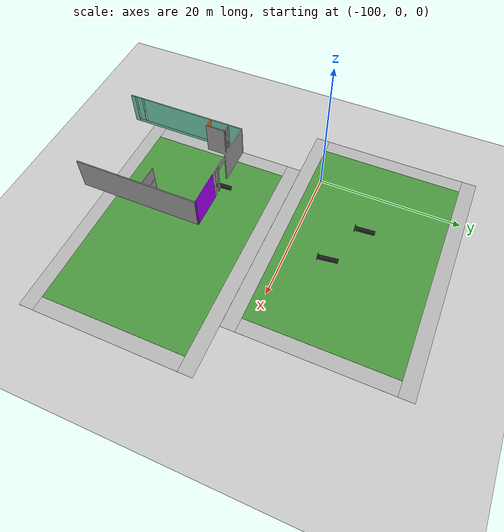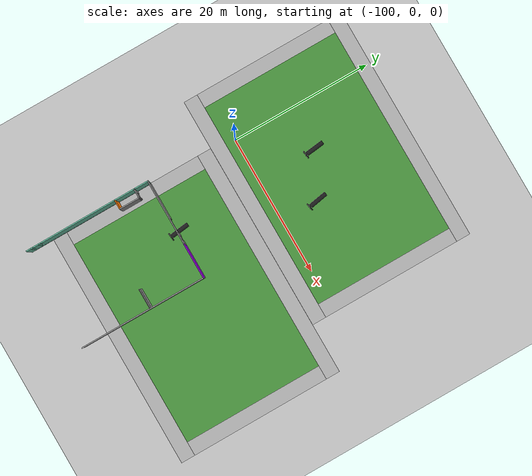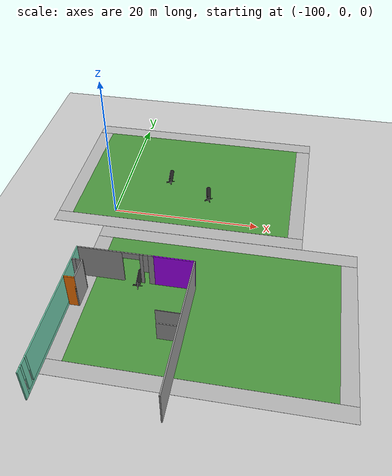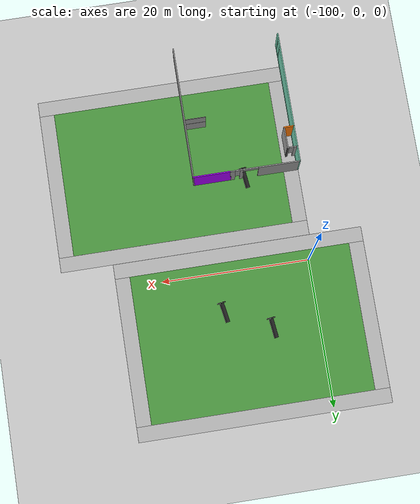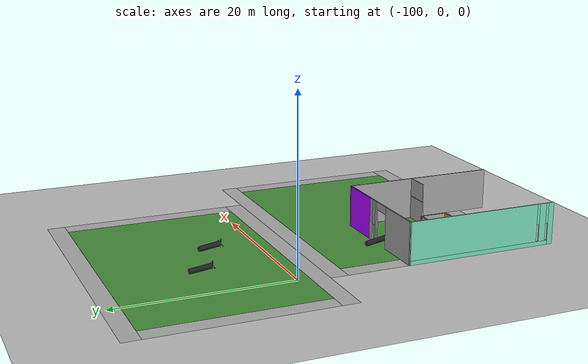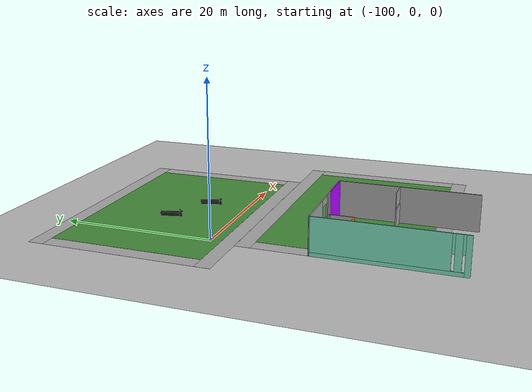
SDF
<sdf version="1.7">
 <world name="default">
  <model name="ground_plane">
   <static>1</static>
   <link name="link">
    <collision name="collision">
     <geometry><plane><normal>0 0 1</normal><size>100 100</size></plane></geometry>
     <surface><friction><ode><mu>100</mu><mu2>50</mu2></ode></friction></surface>
    </collision>
    <visual name="visual">
     <cast_shadows>0</cast_shadows>
     <geometry><plane><normal>0 0 1</normal><size>100 100</size></plane></geometry>
     <material>
      <script><uri>file://media/materials/scripts/gazebo.material</uri><name>Gazebo/Grey</name></script>
     </material>
    </visual>
   </link>
  </model>
  <model name="robocup_3d_field_1">
   <static>1</static>
   <link name="field">
    <pose>0 0 0.01 0 -0 0</pose>
    <collision name="collision">
     <geometry><plane><normal>0 0 1</normal><size>30 20</size></plane></geometry>
     <surface><friction><ode><mu>100</mu><mu2>50</mu2></ode></friction></surface>
    </collision>
    <visual name="base1">
     <pose>0 11 0.001 0 -0 0</pose>
     <cast_shadows>0</cast_shadows>
     <geometry><plane><normal>0 0 1</normal><size>34 2</size></plane></geometry>
     <material>
      <script>
       <uri>model://robocup_3Dsim_field/materials/scripts/</uri>
       <uri>model://robocup_3Dsim_field/materials/textures/</uri>
       <name>RoboCup/FieldBorder</name>
      </script>
     </material>
    </visual>
    <visual name="base2">
     <pose>0 -11 0.001 0 -0 0</pose>
     <cast_shadows>0</cast_shadows>
     <geometry><plane><normal>0 0 1</normal><size>34 2</size></plane></geometry>
     <material>
      <script>
       <uri>model://robocup_3Dsim_field/materials/scripts/</uri>
       <uri>model://robocup_3Dsim_field/materials/textures/</uri>
       <name>RoboCup/FieldBorder</name>
      </script>
     </material>
    </visual>
    <visual name="base3">
     <pose>16 0 0.001 0 -0 0</pose>
     <cast_shadows>0</cast_shadows>
     <geometry><plane><normal>0 0 1</normal><size>2 20</size></plane></geometry>
     <material>
      <script>
       <uri>model://robocup_3Dsim_field/materials/scripts/</uri>
       <uri>model://robocup_3Dsim_field/materials/textures/</uri>
       <name>RoboCup/FieldBorder</name>
      </script>
     </material>
    </visual>
    <visual name="base4">
     <pose>-16 0 0.001 0 -0 0</pose>
     <cast_shadows>0</cast_shadows>
     <geometry><plane><normal>0 0 1</normal><size>2 20</size></plane></geometry>
     <material>
      <script>
       <uri>model://robocup_3Dsim_field/materials/scripts/</uri>
       <uri>model://robocup_3Dsim_field/materials/textures/</uri>
       <name>RoboCup/FieldBorder</name>
      </script>
     </material>
    </visual>
    <visual name="carpet">
     <cast_shadows>0</cast_shadows>
     <geometry><plane><normal>0 0 1</normal><size>30 20</size></plane></geometry>
     <material>
      <script>
       <uri>model://robocup_3Dsim_field/materials/scripts/</uri>
       <uri>model://robocup_3Dsim_field/materials/textures/</uri>
       <name>RoboCup/Grass</name>
      </script>
     </material>
    </visual>
   </link>
   <pose>-90.7952 8.5998 0 0 -0 0</pose>
  </model>
  <model name="robocup_3d_field_4">
   <static>1</static>
   <link name="field">
    <pose>0 0 0.01 0 -0 0</pose>
    <collision name="collision">
     <geometry><plane><normal>0 0 1</normal><size>30 20</size></plane></geometry>
     <surface><friction><ode><mu>100</mu><mu2>50</mu2></ode></friction></surface>
    </collision>
    <visual name="base1">
     <pose>0 11 0.001 0 -0 0</pose>
     <cast_shadows>0</cast_shadows>
     <geometry><plane><normal>0 0 1</normal><size>34 2</size></plane></geometry>
     <material>
      <script>
       <uri>model://robocup_3Dsim_field/materials/scripts/</uri>
       <uri>model://robocup_3Dsim_field/materials/textures/</uri>
       <name>RoboCup/FieldBorder</name>
      </script>
     </material>
    </visual>
    <visual name="base2">
     <pose>0 -11 0.001 0 -0 0</pose>
     <cast_shadows>0</cast_shadows>
     <geometry><plane><normal>0 0 1</normal><size>34 2</size></plane></geometry>
     <material>
      <script>
       <uri>model://robocup_3Dsim_field/materials/scripts/</uri>
       <uri>model://robocup_3Dsim_field/materials/textures/</uri>
       <name>RoboCup/FieldBorder</name>
      </script>
     </material>
    </visual>
    <visual name="base3">
     <pose>16 0 0.001 0 -0 0</pose>
     <cast_shadows>0</cast_shadows>
     <geometry><plane><normal>0 0 1</normal><size>2 20</size></plane></geometry>
     <material>
      <script>
       <uri>model://robocup_3Dsim_field/materials/scripts/</uri>
       <uri>model://robocup_3Dsim_field/materials/textures/</uri>
       <name>RoboCup/FieldBorder</name>
      </script>
     </material>
    </visual>
    <visual name="base4">
     <pose>-16 0 0.001 0 -0 0</pose>
     <cast_shadows>0</cast_shadows>
     <geometry><plane><normal>0 0 1</normal><size>2 20</size></plane></geometry>
     <material>
      <script>
       <uri>model://robocup_3Dsim_field/materials/scripts/</uri>
       <uri>model://robocup_3Dsim_field/materials/textures/</uri>
       <name>RoboCup/FieldBorder</name>
      </script>
     </material>
    </visual>
    <visual name="carpet">
     <cast_shadows>0</cast_shadows>
     <geometry><plane><normal>0 0 1</normal><size>30 20</size></plane></geometry>
     <material>
      <script>
       <uri>model://robocup_3Dsim_field/materials/scripts/</uri>
       <uri>model://robocup_3Dsim_field/materials/textures/</uri>
       <name>RoboCup/Grass</name>
      </script>
     </material>
    </visual>
   </link>
   <pose>-83.7199 -15.4098 0 0 -0 0</pose>
  </model>
  <model name="33333osrf_elevator">
   <link name="Wall_0">
    <pose>-7.17647 0.013004 0 0 -0 1.57174</pose>
    <visual name="Wall_0_Visual_1">
     <meta><layer>0</layer></meta>
     <pose>0.331828 0 0.25 0 -0 0</pose>
     <geometry><box><size>17.4519 0.15 0.5</size></box></geometry>
     <material>
      <script><uri>file://media/materials/scripts/gazebo.material</uri><name>Gazebo/Grey</name></script>
      <ambient>0.435294 0.796078 0.67451 1</ambient>
      <shader type="pixel"/>
     </material>
    </visual>
    <visual name="Wall_0_Visual_0">
     <meta><layer>0</layer></meta>
     <pose>-8.72596 0 2.4385 0 -0 0</pose>
     <geometry><box><size>0.663656 0.15 4.877</size></box></geometry>
     <material>
      <script><uri>file://media/materials/scripts/gazebo.material</uri><name>Gazebo/Grey</name></script>
      <ambient>0.435294 0.796078 0.67451 1</ambient>
      <shader type="pixel"/>
     </material>
    </visual>
    <visual name="Wall_0_Visual_3">
     <meta><layer>0</layer></meta>
     <pose>1.05709 0 2.6885 0 -0 0</pose>
     <geometry><box><size>16.0014 0.15 4.377</size></box></geometry>
     <material>
      <script><uri>file://media/materials/scripts/gazebo.material</uri><name>Gazebo/Grey</name></script>
      <ambient>0.435294 0.796078 0.67451 1</ambient>
      <shader type="pixel"/>
     </material>
    </visual>
    <visual name="Wall_0_Visual_2">
     <meta><layer>0</layer></meta>
     <pose>-7.67281 0 2.6885 0 -0 0</pose>
     <geometry><box><size>0.816657 0.15 4.377</size></box></geometry>
     <material>
      <script><uri>file://media/materials/scripts/gazebo.material</uri><name>Gazebo/Grey</name></script>
      <ambient>0.435294 0.796078 0.67451 1</ambient>
      <shader type="pixel"/>
     </material>
    </visual>
    <visual name="Wall_0_Visual_4">
     <meta><layer>0</layer></meta>
     <pose>-8.23763 0 3.6885 0 -0 0</pose>
     <geometry><box><size>0.313 0.15 2.377</size></box></geometry>
     <material>
      <script><uri>file://media/materials/scripts/gazebo.material</uri><name>Gazebo/Grey</name></script>
      <ambient>0.435294 0.796078 0.67451 1</ambient>
      <shader type="pixel"/>
     </material>
    </visual>
    <visual name="Wall_0_Visual_5">
     <meta><layer>0</layer></meta>
     <pose>-7.10405 0 3.6885 0 -0 0</pose>
     <geometry><box><size>0.320861 0.15 2.377</size></box></geometry>
     <material>
      <script><uri>file://media/materials/scripts/gazebo.material</uri><name>Gazebo/Grey</name></script>
      <ambient>0.435294 0.796078 0.67451 1</ambient>
      <shader type="pixel"/>
     </material>
    </visual>
    <collision name="Wall_0_Collision_0">
     <pose>-8.72596 0 2.4385 0 -0 0</pose>
     <geometry><box><size>0.663656 0.15 4.877</size></box></geometry>
     <surface>
      <friction>
       <ode><mu>1</mu><mu2>1</mu2><fdir1>0 0 0</fdir1><slip1>0</slip1><slip2>0</slip2></ode>
       <torsional>
        <coefficient>1</coefficient>
        <patch_radius>0</patch_radius>
        <surface_radius>0</surface_radius>
        <use_patch_radius>1</use_patch_radius>
        <ode><slip>0</slip></ode>
       </torsional>
      </friction>
      <bounce><restitution_coefficient>0</restitution_coefficient><threshold>1e+06</threshold></bounce>
      <contact>
       <collide_without_contact>0</collide_without_contact>
       <collide_without_contact_bitmask>1</collide_without_contact_bitmask>
       <collide_bitmask>1</collide_bitmask>
       <ode>
        <soft_cfm>0</soft_cfm>
        <soft_erp>0.2</soft_erp>
        <kp>1e+13</kp>
        <kd>1</kd>
        <max_vel>0.01</max_vel>
        <min_depth>0</min_depth>
       </ode>
       <bullet>
        <split_impulse>1</split_impulse>
        <split_impulse_penetration_threshold>-0.01</split_impulse_penetration_threshold>
        <soft_cfm>0</soft_cfm>
        <soft_erp>0.2</soft_erp>
        <kp>1e+13</kp>
        <kd>1</kd>
       </bullet>
      </contact>
     </surface>
    </collision>
    <collision name="Wall_0_Collision_1">
     <pose>0.331828 0 0.25 0 -0 0</pose>
     <geometry><box><size>17.4519 0.15 0.5</size></box></geometry>
     <surface>
      <friction>
       <ode><mu>1</mu><mu2>1</mu2><fdir1>0 0 0</fdir1><slip1>0</slip1><slip2>0</slip2></ode>
       <torsional>
        <coefficient>1</coefficient>
        <patch_radius>0</patch_radius>
        <surface_radius>0</surface_radius>
        <use_patch_radius>1</use_patch_radius>
        <ode><slip>0</slip></ode>
       </torsional>
      </friction>
      <bounce><restitution_coefficient>0</restitution_coefficient><threshold>1e+06</threshold></bounce>
      <contact>
       <collide_without_contact>0</collide_without_contact>
       <collide_without_contact_bitmask>1</collide_without_contact_bitmask>
       <collide_bitmask>1</collide_bitmask>
       <ode>
        <soft_cfm>0</soft_cfm>
        <soft_erp>0.2</soft_erp>
        <kp>1e+13</kp>
        <kd>1</kd>
        <max_vel>0.01</max_vel>
        <min_depth>0</min_depth>
       </ode>
       <bullet>
        <split_impulse>1</split_impulse>
        <split_impulse_penetration_threshold>-0.01</split_impulse_penetration_threshold>
        <soft_cfm>0</soft_cfm>
        <soft_erp>0.2</soft_erp>
        <kp>1e+13</kp>
        <kd>1</kd>
       </bullet>
      </contact>
     </surface>
    </collision>
    <collision name="Wall_0_Collision_5">
     <pose>-7.10405 0 3.6885 0 -0 0</pose>
     <geometry><box><size>0.320861 0.15 2.377</size></box></geometry>
     <surface>
      <friction>
       <ode><mu>1</mu><mu2>1</mu2><fdir1>0 0 0</fdir1><slip1>0</slip1><slip2>0</slip2></ode>
       <torsional>
        <coefficient>1</coefficient>
        <patch_radius>0</patch_radius>
        <surface_radius>0</surface_radius>
        <use_patch_radius>1</use_patch_radius>
        <ode><slip>0</slip></ode>
       </torsional>
      </friction>
      <bounce><restitution_coefficient>0</restitution_coefficient><threshold>1e+06</threshold></bounce>
      <contact>
       <collide_without_contact>0</collide_without_contact>
       <collide_without_contact_bitmask>1</collide_without_contact_bitmask>
       <collide_bitmask>1</collide_bitmask>
       <ode>
        <soft_cfm>0</soft_cfm>
        <soft_erp>0.2</soft_erp>
        <kp>1e+13</kp>
        <kd>1</kd>
        <max_vel>0.01</max_vel>
        <min_depth>0</min_depth>
       </ode>
       <bullet>
        <split_impulse>1</split_impulse>
        <split_impulse_penetration_threshold>-0.01</split_impulse_penetration_threshold>
        <soft_cfm>0</soft_cfm>
        <soft_erp>0.2</soft_erp>
        <kp>1e+13</kp>
        <kd>1</kd>
       </bullet>
      </contact>
     </surface>
    </collision>
    <collision name="Wall_0_Collision_2">
     <pose>-7.67281 0 2.6885 0 -0 0</pose>
     <geometry><box><size>0.816657 0.15 4.377</size></box></geometry>
     <surface>
      <friction>
       <ode><mu>1</mu><mu2>1</mu2><fdir1>0 0 0</fdir1><slip1>0</slip1><slip2>0</slip2></ode>
       <torsional>
        <coefficient>1</coefficient>
        <patch_radius>0</patch_radius>
        <surface_radius>0</surface_radius>
        <use_patch_radius>1</use_patch_radius>
        <ode><slip>0</slip></ode>
       </torsional>
      </friction>
      <bounce><restitution_coefficient>0</restitution_coefficient><threshold>1e+06</threshold></bounce>
      <contact>
       <collide_without_contact>0</collide_without_contact>
       <collide_without_contact_bitmask>1</collide_without_contact_bitmask>
       <collide_bitmask>1</collide_bitmask>
       <ode>
        <soft_cfm>0</soft_cfm>
        <soft_erp>0.2</soft_erp>
        <kp>1e+13</kp>
        <kd>1</kd>
        <max_vel>0.01</max_vel>
        <min_depth>0</min_depth>
       </ode>
       <bullet>
        <split_impulse>1</split_impulse>
        <split_impulse_penetration_threshold>-0.01</split_impulse_penetration_threshold>
        <soft_cfm>0</soft_cfm>
        <soft_erp>0.2</soft_erp>
        <kp>1e+13</kp>
        <kd>1</kd>
       </bullet>
      </contact>
     </surface>
    </collision>
    <collision name="Wall_0_Collision_3">
     <pose>1.05709 0 2.6885 0 -0 0</pose>
     <geometry><box><size>16.0014 0.15 4.377</size></box></geometry>
     <surface>
      <friction>
       <ode><mu>1</mu><mu2>1</mu2><fdir1>0 0 0</fdir1><slip1>0</slip1><slip2>0</slip2></ode>
       <torsional>
        <coefficient>1</coefficient>
        <patch_radius>0</patch_radius>
        <surface_radius>0</surface_radius>
        <use_patch_radius>1</use_patch_radius>
        <ode><slip>0</slip></ode>
       </torsional>
      </friction>
      <bounce><restitution_coefficient>0</restitution_coefficient><threshold>1e+06</threshold></bounce>
      <contact>
       <collide_without_contact>0</collide_without_contact>
       <collide_without_contact_bitmask>1</collide_without_contact_bitmask>
       <collide_bitmask>1</collide_bitmask>
       <ode>
        <soft_cfm>0</soft_cfm>
        <soft_erp>0.2</soft_erp>
        <kp>1e+13</kp>
        <kd>1</kd>
        <max_vel>0.01</max_vel>
        <min_depth>0</min_depth>
       </ode>
       <bullet>
        <split_impulse>1</split_impulse>
        <split_impulse_penetration_threshold>-0.01</split_impulse_penetration_threshold>
        <soft_cfm>0</soft_cfm>
        <soft_erp>0.2</soft_erp>
        <kp>1e+13</kp>
        <kd>1</kd>
       </bullet>
      </contact>
     </surface>
    </collision>
    <collision name="Wall_0_Collision_4">
     <pose>-8.23763 0 3.6885 0 -0 0</pose>
     <geometry><box><size>0.313 0.15 2.377</size></box></geometry>
     <surface>
      <friction>
       <ode><mu>1</mu><mu2>1</mu2><fdir1>0 0 0</fdir1><slip1>0</slip1><slip2>0</slip2></ode>
       <torsional>
        <coefficient>1</coefficient>
        <patch_radius>0</patch_radius>
        <surface_radius>0</surface_radius>
        <use_patch_radius>1</use_patch_radius>
        <ode><slip>0</slip></ode>
       </torsional>
      </friction>
      <bounce><restitution_coefficient>0</restitution_coefficient><threshold>1e+06</threshold></bounce>
      <contact>
       <collide_without_contact>0</collide_without_contact>
       <collide_without_contact_bitmask>1</collide_without_contact_bitmask>
       <collide_bitmask>1</collide_bitmask>
       <ode>
        <soft_cfm>0</soft_cfm>
        <soft_erp>0.2</soft_erp>
        <kp>1e+13</kp>
        <kd>1</kd>
        <max_vel>0.01</max_vel>
        <min_depth>0</min_depth>
       </ode>
       <bullet>
        <split_impulse>1</split_impulse>
        <split_impulse_penetration_threshold>-0.01</split_impulse_penetration_threshold>
        <soft_cfm>0</soft_cfm>
        <soft_erp>0.2</soft_erp>
        <kp>1e+13</kp>
        <kd>1</kd>
       </bullet>
      </contact>
     </surface>
    </collision>
   </link>
   <link name="Wall_20">
    <pose>5.74253 1.037 0 0 0 -3.1383</pose>
    <visual name="Wall_20_Visual">
     <meta><layer>0</layer></meta>
     <pose>0 0 1.3715 0 -0 0</pose>
     <geometry><box><size>2.88731 0.15 2.743</size></box></geometry>
     <material>
      <script><uri>file://media/materials/scripts/gazebo.material</uri><name>Gazebo/Grey</name></script>
      <ambient>1 1 1 1</ambient>
      <shader type="pixel"/>
     </material>
    </visual>
    <collision name="Wall_20_Collision">
     <pose>0 0 1.3715 0 -0 0</pose>
     <geometry><box><size>2.88731 0.15 2.743</size></box></geometry>
     <surface>
      <friction>
       <ode><mu>1</mu><mu2>1</mu2><fdir1>0 0 0</fdir1><slip1>0</slip1><slip2>0</slip2></ode>
       <torsional>
        <coefficient>1</coefficient>
        <patch_radius>0</patch_radius>
        <surface_radius>0</surface_radius>
        <use_patch_radius>1</use_patch_radius>
        <ode><slip>0</slip></ode>
       </torsional>
      </friction>
      <bounce><restitution_coefficient>0</restitution_coefficient><threshold>1e+06</threshold></bounce>
      <contact>
       <collide_without_contact>0</collide_without_contact>
       <collide_without_contact_bitmask>1</collide_without_contact_bitmask>
       <collide_bitmask>1</collide_bitmask>
       <ode>
        <soft_cfm>0</soft_cfm>
        <soft_erp>0.2</soft_erp>
        <kp>1e+13</kp>
        <kd>1</kd>
        <max_vel>0.01</max_vel>
        <min_depth>0</min_depth>
       </ode>
       <bullet>
        <split_impulse>1</split_impulse>
        <split_impulse_penetration_threshold>-0.01</split_impulse_penetration_threshold>
        <soft_cfm>0</soft_cfm>
        <soft_erp>0.2</soft_erp>
        <kp>1e+13</kp>
        <kd>1</kd>
       </bullet>
      </contact>
     </surface>
    </collision>
   </link>
   <link name="Wall_29">
    <pose>-6.49697 4.1045 0 0 -0 0</pose>
    <visual name="Wall_29_Visual">
     <meta><layer>0</layer></meta>
     <pose>0 0 2.4385 0 -0 0</pose>
     <geometry><box><size>1.39187 0.15 4.877</size></box></geometry>
     <material>
      <script><uri>file://media/materials/scripts/gazebo.material</uri><name>Gazebo/Grey</name></script>
      <ambient>0.996078 0.47451 0.0196078 1</ambient>
      <shader type="pixel"/>
     </material>
    </visual>
    <collision name="Wall_29_Collision">
     <pose>0 0 2.4385 0 -0 0</pose>
     <geometry><box><size>1.39187 0.15 4.877</size></box></geometry>
     <surface>
      <friction>
       <ode><mu>1</mu><mu2>1</mu2><fdir1>0 0 0</fdir1><slip1>0</slip1><slip2>0</slip2></ode>
       <torsional>
        <coefficient>1</coefficient>
        <patch_radius>0</patch_radius>
        <surface_radius>0</surface_radius>
        <use_patch_radius>1</use_patch_radius>
        <ode><slip>0</slip></ode>
       </torsional>
      </friction>
      <bounce><restitution_coefficient>0</restitution_coefficient><threshold>1e+06</threshold></bounce>
      <contact>
       <collide_without_contact>0</collide_without_contact>
       <collide_without_contact_bitmask>1</collide_without_contact_bitmask>
       <collide_bitmask>1</collide_bitmask>
       <ode>
        <soft_cfm>0</soft_cfm>
        <soft_erp>0.2</soft_erp>
        <kp>1e+13</kp>
        <kd>1</kd>
        <max_vel>0.01</max_vel>
        <min_depth>0</min_depth>
       </ode>
       <bullet>
        <split_impulse>1</split_impulse>
        <split_impulse_penetration_threshold>-0.01</split_impulse_penetration_threshold>
        <soft_cfm>0</soft_cfm>
        <soft_erp>0.2</soft_erp>
        <kp>1e+13</kp>
        <kd>1</kd>
       </bullet>
      </contact>
     </surface>
    </collision>
   </link>
   <link name="Wall_30">
    <pose>-5.87597 5.5295 0 0 -0 1.5708</pose>
    <visual name="Wall_30_Visual">
     <meta><layer>0</layer></meta>
     <pose>0 0 2.4385 0 -0 0</pose>
     <geometry><box><size>3 0.15 4.877</size></box></geometry>
     <material>
      <script><uri>file://media/materials/scripts/gazebo.material</uri><name>Gazebo/Grey</name></script>
      <ambient>1 1 1 1</ambient>
      <shader type="pixel"/>
     </material>
    </visual>
    <collision name="Wall_30_Collision">
     <pose>0 0 2.4385 0 -0 0</pose>
     <geometry><box><size>3 0.15 4.877</size></box></geometry>
     <surface>
      <friction>
       <ode><mu>1</mu><mu2>1</mu2><fdir1>0 0 0</fdir1><slip1>0</slip1><slip2>0</slip2></ode>
       <torsional>
        <coefficient>1</coefficient>
        <patch_radius>0</patch_radius>
        <surface_radius>0</surface_radius>
        <use_patch_radius>1</use_patch_radius>
        <ode><slip>0</slip></ode>
       </torsional>
      </friction>
      <bounce><restitution_coefficient>0</restitution_coefficient><threshold>1e+06</threshold></bounce>
      <contact>
       <collide_without_contact>0</collide_without_contact>
       <collide_without_contact_bitmask>1</collide_without_contact_bitmask>
       <collide_bitmask>1</collide_bitmask>
       <ode>
        <soft_cfm>0</soft_cfm>
        <soft_erp>0.2</soft_erp>
        <kp>1e+13</kp>
        <kd>1</kd>
        <max_vel>0.01</max_vel>
        <min_depth>0</min_depth>
       </ode>
       <bullet>
        <split_impulse>1</split_impulse>
        <split_impulse_penetration_threshold>-0.01</split_impulse_penetration_threshold>
        <soft_cfm>0</soft_cfm>
        <soft_erp>0.2</soft_erp>
        <kp>1e+13</kp>
        <kd>1</kd>
       </bullet>
      </contact>
     </surface>
    </collision>
   </link>
   <link name="Wall_31">
    <pose>-6.50397 6.9525 0 0 0 -3.13841</pose>
    <visual name="Wall_31_Visual_0">
     <meta><layer>0</layer></meta>
     <pose>-0.567544 0 2.4385 0 -0 0</pose>
     <geometry><box><size>0.271575 0.15 4.877</size></box></geometry>
     <material>
      <script><uri>file://media/materials/scripts/gazebo.material</uri><name>Gazebo/Grey</name></script>
      <ambient>1 1 1 1</ambient>
      <shader type="pixel"/>
     </material>
    </visual>
    <visual name="Wall_31_Visual_1">
     <meta><layer>0</layer></meta>
     <pose>0.441678 0 2.4385 0 -0 0</pose>
     <geometry><box><size>0.523307 0.15 4.877</size></box></geometry>
     <material>
      <script><uri>file://media/materials/scripts/gazebo.material</uri><name>Gazebo/Grey</name></script>
      <ambient>1 1 1 1</ambient>
      <shader type="pixel"/>
     </material>
    </visual>
    <visual name="Wall_31_Visual_3">
     <meta><layer>0</layer></meta>
     <pose>-0.125866 0 3.4385 0 -0 0</pose>
     <geometry><box><size>0.611781 0.15 2.877</size></box></geometry>
     <material>
      <script><uri>file://media/materials/scripts/gazebo.material</uri><name>Gazebo/Grey</name></script>
      <ambient>1 1 1 1</ambient>
      <shader type="pixel"/>
     </material>
    </visual>
    <collision name="Wall_31_Collision_0">
     <pose>-0.567544 0 2.4385 0 -0 0</pose>
     <geometry><box><size>0.271575 0.15 4.877</size></box></geometry>
     <surface>
      <friction>
       <ode><mu>1</mu><mu2>1</mu2><fdir1>0 0 0</fdir1><slip1>0</slip1><slip2>0</slip2></ode>
       <torsional>
        <coefficient>1</coefficient>
        <patch_radius>0</patch_radius>
        <surface_radius>0</surface_radius>
        <use_patch_radius>1</use_patch_radius>
        <ode><slip>0</slip></ode>
       </torsional>
      </friction>
      <bounce><restitution_coefficient>0</restitution_coefficient><threshold>1e+06</threshold></bounce>
      <contact>
       <collide_without_contact>0</collide_without_contact>
       <collide_without_contact_bitmask>1</collide_without_contact_bitmask>
       <collide_bitmask>1</collide_bitmask>
       <ode>
        <soft_cfm>0</soft_cfm>
        <soft_erp>0.2</soft_erp>
        <kp>1e+13</kp>
        <kd>1</kd>
        <max_vel>0.01</max_vel>
        <min_depth>0</min_depth>
       </ode>
       <bullet>
        <split_impulse>1</split_impulse>
        <split_impulse_penetration_threshold>-0.01</split_impulse_penetration_threshold>
        <soft_cfm>0</soft_cfm>
        <soft_erp>0.2</soft_erp>
        <kp>1e+13</kp>
        <kd>1</kd>
       </bullet>
      </contact>
     </surface>
    </collision>
    <collision name="Wall_31_Collision_1">
     <pose>0.441678 0 2.4385 0 -0 0</pose>
     <geometry><box><size>0.523307 0.15 4.877</size></box></geometry>
     <surface>
      <friction>
       <ode><mu>1</mu><mu2>1</mu2><fdir1>0 0 0</fdir1><slip1>0</slip1><slip2>0</slip2></ode>
       <torsional>
        <coefficient>1</coefficient>
        <patch_radius>0</patch_radius>
        <surface_radius>0</surface_radius>
        <use_patch_radius>1</use_patch_radius>
        <ode><slip>0</slip></ode>
       </torsional>
      </friction>
      <bounce><restitution_coefficient>0</restitution_coefficient><threshold>1e+06</threshold></bounce>
      <contact>
       <collide_without_contact>0</collide_without_contact>
       <collide_without_contact_bitmask>1</collide_without_contact_bitmask>
       <collide_bitmask>1</collide_bitmask>
       <ode>
        <soft_cfm>0</soft_cfm>
        <soft_erp>0.2</soft_erp>
        <kp>1e+13</kp>
        <kd>1</kd>
        <max_vel>0.01</max_vel>
        <min_depth>0</min_depth>
       </ode>
       <bullet>
        <split_impulse>1</split_impulse>
        <split_impulse_penetration_threshold>-0.01</split_impulse_penetration_threshold>
        <soft_cfm>0</soft_cfm>
        <soft_erp>0.2</soft_erp>
        <kp>1e+13</kp>
        <kd>1</kd>
       </bullet>
      </contact>
     </surface>
    </collision>
    <collision name="Wall_31_Collision_3">
     <pose>-0.125866 0 3.4385 0 -0 0</pose>
     <geometry><box><size>0.611781 0.15 2.877</size></box></geometry>
     <surface>
      <friction>
       <ode><mu>1</mu><mu2>1</mu2><fdir1>0 0 0</fdir1><slip1>0</slip1><slip2>0</slip2></ode>
       <torsional>
        <coefficient>1</coefficient>
        <patch_radius>0</patch_radius>
        <surface_radius>0</surface_radius>
        <use_patch_radius>1</use_patch_radius>
        <ode><slip>0</slip></ode>
       </torsional>
      </friction>
      <bounce><restitution_coefficient>0</restitution_coefficient><threshold>1e+06</threshold></bounce>
      <contact>
       <collide_without_contact>0</collide_without_contact>
       <collide_without_contact_bitmask>1</collide_without_contact_bitmask>
       <collide_bitmask>1</collide_bitmask>
       <ode>
        <soft_cfm>0</soft_cfm>
        <soft_erp>0.2</soft_erp>
        <kp>1e+13</kp>
        <kd>1</kd>
        <max_vel>0.01</max_vel>
        <min_depth>0</min_depth>
       </ode>
       <bullet>
        <split_impulse>1</split_impulse>
        <split_impulse_penetration_threshold>-0.01</split_impulse_penetration_threshold>
        <soft_cfm>0</soft_cfm>
        <soft_erp>0.2</soft_erp>
        <kp>1e+13</kp>
        <kd>1</kd>
       </bullet>
      </contact>
     </surface>
    </collision>
   </link>
   <link name="Wall_35">
    <pose>-2.50997 8.9955 0 0 -0 0</pose>
    <visual name="Wall_35_Visual_0">
     <meta><layer>0</layer></meta>
     <pose>-1.92197 0 2.4385 0 -0 0</pose>
     <geometry><box><size>5.65606 0.15 4.877</size></box></geometry>
     <material>
      <script><uri>file://media/materials/scripts/gazebo.material</uri><name>Gazebo/Grey</name></script>
      <ambient>1 1 1 1</ambient>
      <shader type="pixel"/>
     </material>
    </visual>
    <visual name="Wall_35_Visual_1">
     <meta><layer>0</layer></meta>
     <pose>3.22541 0 2.4385 0 -0 0</pose>
     <geometry><box><size>0.406701 0.15 4.877</size></box></geometry>
     <material>
      <script><uri>file://media/materials/scripts/gazebo.material</uri><name>Gazebo/Grey</name></script>
      <ambient>1 1 1 1</ambient>
      <shader type="pixel"/>
     </material>
    </visual>
    <visual name="Wall_35_Visual_2">
     <meta><layer>0</layer></meta>
     <pose>4.40208 0 2.4385 0 -0 0</pose>
     <geometry><box><size>0.695843 0.15 4.877</size></box></geometry>
     <material>
      <script><uri>file://media/materials/scripts/gazebo.material</uri><name>Gazebo/Grey</name></script>
      <ambient>1 1 1 1</ambient>
      <shader type="pixel"/>
     </material>
    </visual>
    <visual name="Wall_35_Visual_5">
     <meta><layer>0</layer></meta>
     <pose>3.74146 0 3.4385 0 -0 0</pose>
     <geometry><box><size>0.625391 0.15 2.877</size></box></geometry>
     <material>
      <script><uri>file://media/materials/scripts/gazebo.material</uri><name>Gazebo/Grey</name></script>
      <ambient>1 1 1 1</ambient>
      <shader type="pixel"/>
     </material>
    </visual>
    <visual name="Wall_35_Visual_6">
     <meta><layer>0</layer></meta>
     <pose>1.96406 0 4.4385 0 -0 0</pose>
     <geometry><box><size>2.116 0.15 0.877</size></box></geometry>
     <material>
      <script><uri>file://media/materials/scripts/gazebo.material</uri><name>Gazebo/Grey</name></script>
      <ambient>1 1 1 1</ambient>
      <shader type="pixel"/>
     </material>
    </visual>
    <collision name="Wall_35_Collision_0">
     <pose>-1.92197 0 2.4385 0 -0 0</pose>
     <geometry><box><size>5.65606 0.15 4.877</size></box></geometry>
     <surface>
      <friction>
       <ode><mu>1</mu><mu2>1</mu2><fdir1>0 0 0</fdir1><slip1>0</slip1><slip2>0</slip2></ode>
       <torsional>
        <coefficient>1</coefficient>
        <patch_radius>0</patch_radius>
        <surface_radius>0</surface_radius>
        <use_patch_radius>1</use_patch_radius>
        <ode><slip>0</slip></ode>
       </torsional>
      </friction>
      <bounce><restitution_coefficient>0</restitution_coefficient><threshold>1e+06</threshold></bounce>
      <contact>
       <collide_without_contact>0</collide_without_contact>
       <collide_without_contact_bitmask>1</collide_without_contact_bitmask>
       <collide_bitmask>1</collide_bitmask>
       <ode>
        <soft_cfm>0</soft_cfm>
        <soft_erp>0.2</soft_erp>
        <kp>1e+13</kp>
        <kd>1</kd>
        <max_vel>0.01</max_vel>
        <min_depth>0</min_depth>
       </ode>
       <bullet>
        <split_impulse>1</split_impulse>
        <split_impulse_penetration_threshold>-0.01</split_impulse_penetration_threshold>
        <soft_cfm>0</soft_cfm>
        <soft_erp>0.2</soft_erp>
        <kp>1e+13</kp>
        <kd>1</kd>
       </bullet>
      </contact>
     </surface>
    </collision>
    <collision name="Wall_35_Collision_1">
     <pose>3.22541 0 2.4385 0 -0 0</pose>
     <geometry><box><size>0.406701 0.15 4.877</size></box></geometry>
     <surface>
      <friction>
       <ode><mu>1</mu><mu2>1</mu2><fdir1>0 0 0</fdir1><slip1>0</slip1><slip2>0</slip2></ode>
       <torsional>
        <coefficient>1</coefficient>
        <patch_radius>0</patch_radius>
        <surface_radius>0</surface_radius>
        <use_patch_radius>1</use_patch_radius>
        <ode><slip>0</slip></ode>
       </torsional>
      </friction>
      <bounce><restitution_coefficient>0</restitution_coefficient><threshold>1e+06</threshold></bounce>
      <contact>
       <collide_without_contact>0</collide_without_contact>
       <collide_without_contact_bitmask>1</collide_without_contact_bitmask>
       <collide_bitmask>1</collide_bitmask>
       <ode>
        <soft_cfm>0</soft_cfm>
        <soft_erp>0.2</soft_erp>
        <kp>1e+13</kp>
        <kd>1</kd>
        <max_vel>0.01</max_vel>
        <min_depth>0</min_depth>
       </ode>
       <bullet>
        <split_impulse>1</split_impulse>
        <split_impulse_penetration_threshold>-0.01</split_impulse_penetration_threshold>
        <soft_cfm>0</soft_cfm>
        <soft_erp>0.2</soft_erp>
        <kp>1e+13</kp>
        <kd>1</kd>
       </bullet>
      </contact>
     </surface>
    </collision>
    <collision name="Wall_35_Collision_2">
     <pose>4.40208 0 2.4385 0 -0 0</pose>
     <geometry><box><size>0.695843 0.15 4.877</size></box></geometry>
     <surface>
      <friction>
       <ode><mu>1</mu><mu2>1</mu2><fdir1>0 0 0</fdir1><slip1>0</slip1><slip2>0</slip2></ode>
       <torsional>
        <coefficient>1</coefficient>
        <patch_radius>0</patch_radius>
        <surface_radius>0</surface_radius>
        <use_patch_radius>1</use_patch_radius>
        <ode><slip>0</slip></ode>
       </torsional>
      </friction>
      <bounce><restitution_coefficient>0</restitution_coefficient><threshold>1e+06</threshold></bounce>
      <contact>
       <collide_without_contact>0</collide_without_contact>
       <collide_without_contact_bitmask>1</collide_without_contact_bitmask>
       <collide_bitmask>1</collide_bitmask>
       <ode>
        <soft_cfm>0</soft_cfm>
        <soft_erp>0.2</soft_erp>
        <kp>1e+13</kp>
        <kd>1</kd>
        <max_vel>0.01</max_vel>
        <min_depth>0</min_depth>
       </ode>
       <bullet>
        <split_impulse>1</split_impulse>
        <split_impulse_penetration_threshold>-0.01</split_impulse_penetration_threshold>
        <soft_cfm>0</soft_cfm>
        <soft_erp>0.2</soft_erp>
        <kp>1e+13</kp>
        <kd>1</kd>
       </bullet>
      </contact>
     </surface>
    </collision>
    <collision name="Wall_35_Collision_5">
     <pose>3.74146 0 3.4385 0 -0 0</pose>
     <geometry><box><size>0.625391 0.15 2.877</size></box></geometry>
     <surface>
      <friction>
       <ode><mu>1</mu><mu2>1</mu2><fdir1>0 0 0</fdir1><slip1>0</slip1><slip2>0</slip2></ode>
       <torsional>
        <coefficient>1</coefficient>
        <patch_radius>0</patch_radius>
        <surface_radius>0</surface_radius>
        <use_patch_radius>1</use_patch_radius>
        <ode><slip>0</slip></ode>
       </torsional>
      </friction>
      <bounce><restitution_coefficient>0</restitution_coefficient><threshold>1e+06</threshold></bounce>
      <contact>
       <collide_without_contact>0</collide_without_contact>
       <collide_without_contact_bitmask>1</collide_without_contact_bitmask>
       <collide_bitmask>1</collide_bitmask>
       <ode>
        <soft_cfm>0</soft_cfm>
        <soft_erp>0.2</soft_erp>
        <kp>1e+13</kp>
        <kd>1</kd>
        <max_vel>0.01</max_vel>
        <min_depth>0</min_depth>
       </ode>
       <bullet>
        <split_impulse>1</split_impulse>
        <split_impulse_penetration_threshold>-0.01</split_impulse_penetration_threshold>
        <soft_cfm>0</soft_cfm>
        <soft_erp>0.2</soft_erp>
        <kp>1e+13</kp>
        <kd>1</kd>
       </bullet>
      </contact>
     </surface>
    </collision>
    <collision name="Wall_35_Collision_6">
     <pose>1.96406 0 4.4385 0 -0 0</pose>
     <geometry><box><size>2.116 0.15 0.877</size></box></geometry>
     <surface>
      <friction>
       <ode><mu>1</mu><mu2>1</mu2><fdir1>0 0 0</fdir1><slip1>0</slip1><slip2>0</slip2></ode>
       <torsional>
        <coefficient>1</coefficient>
        <patch_radius>0</patch_radius>
        <surface_radius>0</surface_radius>
        <use_patch_radius>1</use_patch_radius>
        <ode><slip>0</slip></ode>
       </torsional>
      </friction>
      <bounce><restitution_coefficient>0</restitution_coefficient><threshold>1e+06</threshold></bounce>
      <contact>
       <collide_without_contact>0</collide_without_contact>
       <collide_without_contact_bitmask>1</collide_without_contact_bitmask>
       <collide_bitmask>1</collide_bitmask>
       <ode>
        <soft_cfm>0</soft_cfm>
        <soft_erp>0.2</soft_erp>
        <kp>1e+13</kp>
        <kd>1</kd>
        <max_vel>0.01</max_vel>
        <min_depth>0</min_depth>
       </ode>
       <bullet>
        <split_impulse>1</split_impulse>
        <split_impulse_penetration_threshold>-0.01</split_impulse_penetration_threshold>
        <soft_cfm>0</soft_cfm>
        <soft_erp>0.2</soft_erp>
        <kp>1e+13</kp>
        <kd>1</kd>
       </bullet>
      </contact>
     </surface>
    </collision>
   </link>
   <link name="Wall_36">
    <pose>4.67503 8.9955 0 0 -0 0</pose>
    <visual name="Wall_36_Visual">
     <meta><layer>0</layer></meta>
     <pose>0 0 2.4385 0 -0 0</pose>
     <geometry><box><size>5.17 0.15 4.877</size></box></geometry>
     <material>
      <script><uri>file://media/materials/scripts/gazebo.material</uri><name>Gazebo/Grey</name></script>
      <ambient>0.666667 0 1 1</ambient>
      <shader type="pixel"/>
     </material>
    </visual>
    <collision name="Wall_36_Collision">
     <pose>0 0 2.4385 0 -0 0</pose>
     <geometry><box><size>5.17 0.15 4.877</size></box></geometry>
     <surface>
      <friction>
       <ode><mu>1</mu><mu2>1</mu2><fdir1>0 0 0</fdir1><slip1>0</slip1><slip2>0</slip2></ode>
       <torsional>
        <coefficient>1</coefficient>
        <patch_radius>0</patch_radius>
        <surface_radius>0</surface_radius>
        <use_patch_radius>1</use_patch_radius>
        <ode><slip>0</slip></ode>
       </torsional>
      </friction>
      <bounce><restitution_coefficient>0</restitution_coefficient><threshold>1e+06</threshold></bounce>
      <contact>
       <collide_without_contact>0</collide_without_contact>
       <collide_without_contact_bitmask>1</collide_without_contact_bitmask>
       <collide_bitmask>1</collide_bitmask>
       <ode>
        <soft_cfm>0</soft_cfm>
        <soft_erp>0.2</soft_erp>
        <kp>1e+13</kp>
        <kd>1</kd>
        <max_vel>0.01</max_vel>
        <min_depth>0</min_depth>
       </ode>
       <bullet>
        <split_impulse>1</split_impulse>
        <split_impulse_penetration_threshold>-0.01</split_impulse_penetration_threshold>
        <soft_cfm>0</soft_cfm>
        <soft_erp>0.2</soft_erp>
        <kp>1e+13</kp>
        <kd>1</kd>
       </bullet>
      </contact>
     </surface>
    </collision>
   </link>
   <link name="Wall_5">
    <pose>7.18353 0.013004 0 0 0 -1.57096</pose>
    <visual name="Wall_5_Visual">
     <meta><layer>0</layer></meta>
     <pose>0 0 2.4385 0 -0 0</pose>
     <geometry><box><size>18.1152 0.15 4.877</size></box></geometry>
     <material>
      <script><uri>file://media/materials/scripts/gazebo.material</uri><name>Gazebo/Grey</name></script>
      <ambient>1 1 1 1</ambient>
      <shader type="pixel"/>
     </material>
    </visual>
    <collision name="Wall_5_Collision">
     <pose>0 0 2.4385 0 -0 0</pose>
     <geometry><box><size>18.1152 0.15 4.877</size></box></geometry>
     <surface>
      <friction>
       <ode><mu>1</mu><mu2>1</mu2><fdir1>0 0 0</fdir1><slip1>0</slip1><slip2>0</slip2></ode>
       <torsional>
        <coefficient>1</coefficient>
        <patch_radius>0</patch_radius>
        <surface_radius>0</surface_radius>
        <use_patch_radius>1</use_patch_radius>
        <ode><slip>0</slip></ode>
       </torsional>
      </friction>
      <bounce><restitution_coefficient>0</restitution_coefficient><threshold>1e+06</threshold></bounce>
      <contact>
       <collide_without_contact>0</collide_without_contact>
       <collide_without_contact_bitmask>1</collide_without_contact_bitmask>
       <collide_bitmask>1</collide_bitmask>
       <ode>
        <soft_cfm>0</soft_cfm>
        <soft_erp>0.2</soft_erp>
        <kp>1e+13</kp>
        <kd>1</kd>
        <max_vel>0.01</max_vel>
        <min_depth>0</min_depth>
       </ode>
       <bullet>
        <split_impulse>1</split_impulse>
        <split_impulse_penetration_threshold>-0.01</split_impulse_penetration_threshold>
        <soft_cfm>0</soft_cfm>
        <soft_erp>0.2</soft_erp>
        <kp>1e+13</kp>
        <kd>1</kd>
       </bullet>
      </contact>
     </surface>
    </collision>
   </link>
   <link name="floor1_part6">
    <pose>5.71783 1.06705 3.85828 1.5708 -0 0</pose>
    <visual name="visual">
     <meta><layer>1</layer></meta>
     <geometry><box><size>2.83967 2.0998 0.078</size></box></geometry>
     <material><script><name>Gazebo/Grey</name><uri>__default__</uri></script><shader type="pixel"/></material>
    </visual>
    <collision name="collision">
     <geometry><box><size>2.83967 2.0998 0.078</size></box></geometry>
     <surface>
      <friction>
       <ode><mu>1</mu><mu2>1</mu2><fdir1>0 0 0</fdir1><slip1>0</slip1><slip2>0</slip2></ode>
       <torsional>
        <coefficient>1</coefficient>
        <patch_radius>0</patch_radius>
        <surface_radius>0</surface_radius>
        <use_patch_radius>1</use_patch_radius>
        <ode><slip>0</slip></ode>
       </torsional>
      </friction>
      <bounce><restitution_coefficient>0</restitution_coefficient><threshold>1e+06</threshold></bounce>
      <contact>
       <collide_without_contact>0</collide_without_contact>
       <collide_without_contact_bitmask>1</collide_without_contact_bitmask>
       <collide_bitmask>1</collide_bitmask>
       <ode>
        <soft_cfm>0</soft_cfm>
        <soft_erp>0.2</soft_erp>
        <kp>1e+13</kp>
        <kd>1</kd>
        <max_vel>0.01</max_vel>
        <min_depth>0</min_depth>
       </ode>
       <bullet>
        <split_impulse>1</split_impulse>
        <split_impulse_penetration_threshold>-0.01</split_impulse_penetration_threshold>
        <soft_cfm>0</soft_cfm>
        <soft_erp>0.2</soft_erp>
        <kp>1e+13</kp>
        <kd>1</kd>
       </bullet>
      </contact>
     </surface>
    </collision>
   </link>
   <static>1</static>
   <pose>-93.4835 -21.6 0 0 -0 0</pose>
  </model>
  <model name="submarine_sinking_0_clone_10">
   <pose>-87.5063 4.37829 0.459063 1.50409 -0.337194 0.194228</pose>
   <link name="body">
    <pose>0 0 -1.07935 0 -0 0</pose>
    <inertial>
     <mass>1102.7</mass>
     <inertia><ixx>645.998</ixx><ixy>0</ixy><ixz>0</ixz><iyy>645.998</iyy><iyz>0</iyz><izz>49.6215</izz></inertia>
    </inertial>
    <visual name="body_visual">
     <geometry><cylinder><radius>0.3</radius><length>2.6</length></cylinder></geometry>
     <material>
      <script><uri>file://media/materials/scripts/gazebo.material</uri><name>Gazebo/Black</name></script>
     </material>
    </visual>
    <collision name="body_collision">
     <geometry><cylinder><radius>0.3</radius><length>2.6</length></cylinder></geometry>
    </collision>
    <visual name="spacer_visual">
     <pose>0 0 1.37855 0 -0 0</pose>
     <geometry><cylinder><radius>0.0933402</radius><length>0.127211</length></cylinder></geometry>
     <material>
      <script><uri>file://media/materials/scripts/gazebo.material</uri><name>Gazebo/Black</name></script>
     </material>
    </visual>
   </link>
   <link name="propeller">
    <pose>0 0 0.3455 3.14159 -0 0</pose>
    <inertial>
     <mass>25.2312</mass>
     <inertia><ixx>0.531907</ixx><ixy>0</ixy><ixz>0</ixz><iyy>0.531907</iyy><iyz>0</iyz><izz>1.0513</izz></inertia>
    </inertial>
    <visual name="blade1_visual">
     <pose>0.34334 0 0 0.785398 -0 0</pose>
     <geometry><box><size>0.5 0.154178 0.05455</size></box></geometry>
     <material>
      <script><uri>file://media/materials/scripts/gazebo.material</uri><name>Gazebo/Black</name></script>
     </material>
    </visual>
    <collision name="blade1_collision">
     <pose>0.34334 0 0 0.785398 -0 0</pose>
     <geometry><box><size>0.5 0.154178 0.05455</size></box></geometry>
    </collision>
    <visual name="blade2_visual">
     <pose>0 0.34334 0 0.785398 0 1.5708</pose>
     <geometry><box><size>0.5 0.154178 0.05455</size></box></geometry>
     <material>
      <script><uri>file://media/materials/scripts/gazebo.material</uri><name>Gazebo/Black</name></script>
     </material>
    </visual>
    <collision name="blade2_collision">
     <pose>0 0.34334 0 0.785398 0 1.5708</pose>
     <geometry><box><size>0.5 0.154178 0.05455</size></box></geometry>
    </collision>
    <visual name="blade3_visual">
     <pose>-0.34334 -0 0 -0.785398 0 0</pose>
     <geometry><box><size>0.5 0.154178 0.05455</size></box></geometry>
     <material>
      <script><uri>file://media/materials/scripts/gazebo.material</uri><name>Gazebo/Black</name></script>
     </material>
    </visual>
    <collision name="blade3_collision">
     <pose>-0.34334 -0 0 -0.785398 0 0</pose>
     <geometry><box><size>0.5 0.154178 0.05455</size></box></geometry>
    </collision>
    <visual name="blade4_visual">
     <pose>-0 -0.34334 0 -0.785398 -0 1.5708</pose>
     <geometry><box><size>0.5 0.154178 0.05455</size></box></geometry>
     <material>
      <script><uri>file://media/materials/scripts/gazebo.material</uri><name>Gazebo/Black</name></script>
     </material>
    </visual>
    <collision name="blade4_collision">
     <pose>-0 -0.34334 0 -0.785398 -0 1.5708</pose>
     <geometry><box><size>0.5 0.154178 0.05455</size></box></geometry>
    </collision>
   </link>
   <joint name="spinning_joint" type="revolute">
    <parent>body</parent>
    <child>propeller</child>
    <axis>
     <xyz expressed_in="__model__">0 0 1</xyz>
     <limit><lower>-1e+12</lower><upper>1e+12</upper><effort>-1</effort><velocity>-1</velocity></limit>
     <dynamics><spring_reference>0</spring_reference><spring_stiffness>0</spring_stiffness></dynamics>
    </axis>
   </joint>
   <plugin name="buoyancy" filename="libBuoyancyPlugin.so"><fluid_density>999.1026</fluid_density></plugin>
  </model>
  <model name="submarine_sinking_0_clone_17">
   <pose>-93.6996 7.41767 0.459058 1.50638 -0.214911 0.135701</pose>
   <link name="body">
    <pose>0 0 -1.07935 0 -0 0</pose>
    <inertial>
     <mass>1102.7</mass>
     <inertia><ixx>645.998</ixx><ixy>0</ixy><ixz>0</ixz><iyy>645.998</iyy><iyz>0</iyz><izz>49.6215</izz></inertia>
    </inertial>
    <visual name="body_visual">
     <geometry><cylinder><radius>0.3</radius><length>2.6</length></cylinder></geometry>
     <material>
      <script><uri>file://media/materials/scripts/gazebo.material</uri><name>Gazebo/Black</name></script>
     </material>
    </visual>
    <collision name="body_collision">
     <geometry><cylinder><radius>0.3</radius><length>2.6</length></cylinder></geometry>
    </collision>
    <visual name="spacer_visual">
     <pose>0 0 1.37855 0 -0 0</pose>
     <geometry><cylinder><radius>0.0933402</radius><length>0.127211</length></cylinder></geometry>
     <material>
      <script><uri>file://media/materials/scripts/gazebo.material</uri><name>Gazebo/Black</name></script>
     </material>
    </visual>
   </link>
   <link name="propeller">
    <pose>0 0 0.3455 3.14159 -0 0</pose>
    <inertial>
     <mass>25.2312</mass>
     <inertia><ixx>0.531907</ixx><ixy>0</ixy><ixz>0</ixz><iyy>0.531907</iyy><iyz>0</iyz><izz>1.0513</izz></inertia>
    </inertial>
    <visual name="blade1_visual">
     <pose>0.34334 0 0 0.785398 -0 0</pose>
     <geometry><box><size>0.5 0.154178 0.05455</size></box></geometry>
     <material>
      <script><uri>file://media/materials/scripts/gazebo.material</uri><name>Gazebo/Black</name></script>
     </material>
    </visual>
    <collision name="blade1_collision">
     <pose>0.34334 0 0 0.785398 -0 0</pose>
     <geometry><box><size>0.5 0.154178 0.05455</size></box></geometry>
    </collision>
    <visual name="blade2_visual">
     <pose>0 0.34334 0 0.785398 0 1.5708</pose>
     <geometry><box><size>0.5 0.154178 0.05455</size></box></geometry>
     <material>
      <script><uri>file://media/materials/scripts/gazebo.material</uri><name>Gazebo/Black</name></script>
     </material>
    </visual>
    <collision name="blade2_collision">
     <pose>0 0.34334 0 0.785398 0 1.5708</pose>
     <geometry><box><size>0.5 0.154178 0.05455</size></box></geometry>
    </collision>
    <visual name="blade3_visual">
     <pose>-0.34334 -0 0 -0.785398 0 0</pose>
     <geometry><box><size>0.5 0.154178 0.05455</size></box></geometry>
     <material>
      <script><uri>file://media/materials/scripts/gazebo.material</uri><name>Gazebo/Black</name></script>
     </material>
    </visual>
    <collision name="blade3_collision">
     <pose>-0.34334 -0 0 -0.785398 0 0</pose>
     <geometry><box><size>0.5 0.154178 0.05455</size></box></geometry>
    </collision>
    <visual name="blade4_visual">
     <pose>-0 -0.34334 0 -0.785398 -0 1.5708</pose>
     <geometry><box><size>0.5 0.154178 0.05455</size></box></geometry>
     <material>
      <script><uri>file://media/materials/scripts/gazebo.material</uri><name>Gazebo/Black</name></script>
     </material>
    </visual>
    <collision name="blade4_collision">
     <pose>-0 -0.34334 0 -0.785398 -0 1.5708</pose>
     <geometry><box><size>0.5 0.154178 0.05455</size></box></geometry>
    </collision>
   </link>
   <joint name="spinning_joint" type="revolute">
    <parent>body</parent>
    <child>propeller</child>
    <axis>
     <xyz expressed_in="__model__">0 0 1</xyz>
     <limit><lower>-1e+12</lower><upper>1e+12</upper><effort>-1</effort><velocity>-1</velocity></limit>
     <dynamics><spring_reference>0</spring_reference><spring_stiffness>0</spring_stiffness></dynamics>
    </axis>
   </joint>
   <plugin name="buoyancy" filename="libBuoyancyPlugin.so"><fluid_density>999.1026</fluid_density></plugin>
  </model>
  <model name="submarine_sinking_0_clone_18">
   <pose>-93.1981 -13.4013 0.579253 1.45585 0.111336 0.118499</pose>
   <link name="body">
    <pose>0 0 -1.07935 0 -0 0</pose>
    <inertial>
     <mass>1102.7</mass>
     <inertia><ixx>645.998</ixx><ixy>0</ixy><ixz>0</ixz><iyy>645.998</iyy><iyz>0</iyz><izz>49.6215</izz></inertia>
    </inertial>
    <visual name="body_visual">
     <geometry><cylinder><radius>0.3</radius><length>2.6</length></cylinder></geometry>
     <material>
      <script><uri>file://media/materials/scripts/gazebo.material</uri><name>Gazebo/Black</name></script>
     </material>
    </visual>
    <collision name="body_collision">
     <geometry><cylinder><radius>0.3</radius><length>2.6</length></cylinder></geometry>
    </collision>
    <visual name="spacer_visual">
     <pose>0 0 1.37855 0 -0 0</pose>
     <geometry><cylinder><radius>0.0933402</radius><length>0.127211</length></cylinder></geometry>
     <material>
      <script><uri>file://media/materials/scripts/gazebo.material</uri><name>Gazebo/Black</name></script>
     </material>
    </visual>
   </link>
   <link name="propeller">
    <pose>0 0 0.3455 3.14159 -0 0</pose>
    <inertial>
     <mass>25.2312</mass>
     <inertia><ixx>0.531907</ixx><ixy>0</ixy><ixz>0</ixz><iyy>0.531907</iyy><iyz>0</iyz><izz>1.0513</izz></inertia>
    </inertial>
    <visual name="blade1_visual">
     <pose>0.34334 0 0 0.785398 -0 0</pose>
     <geometry><box><size>0.5 0.154178 0.05455</size></box></geometry>
     <material>
      <script><uri>file://media/materials/scripts/gazebo.material</uri><name>Gazebo/Black</name></script>
     </material>
    </visual>
    <collision name="blade1_collision">
     <pose>0.34334 0 0 0.785398 -0 0</pose>
     <geometry><box><size>0.5 0.154178 0.05455</size></box></geometry>
    </collision>
    <visual name="blade2_visual">
     <pose>0 0.34334 0 0.785398 0 1.5708</pose>
     <geometry><box><size>0.5 0.154178 0.05455</size></box></geometry>
     <material>
      <script><uri>file://media/materials/scripts/gazebo.material</uri><name>Gazebo/Black</name></script>
     </material>
    </visual>
    <collision name="blade2_collision">
     <pose>0 0.34334 0 0.785398 0 1.5708</pose>
     <geometry><box><size>0.5 0.154178 0.05455</size></box></geometry>
    </collision>
    <visual name="blade3_visual">
     <pose>-0.34334 -0 0 -0.785398 0 0</pose>
     <geometry><box><size>0.5 0.154178 0.05455</size></box></geometry>
     <material>
      <script><uri>file://media/materials/scripts/gazebo.material</uri><name>Gazebo/Black</name></script>
     </material>
    </visual>
    <collision name="blade3_collision">
     <pose>-0.34334 -0 0 -0.785398 0 0</pose>
     <geometry><box><size>0.5 0.154178 0.05455</size></box></geometry>
    </collision>
    <visual name="blade4_visual">
     <pose>-0 -0.34334 0 -0.785398 -0 1.5708</pose>
     <geometry><box><size>0.5 0.154178 0.05455</size></box></geometry>
     <material>
      <script><uri>file://media/materials/scripts/gazebo.material</uri><name>Gazebo/Black</name></script>
     </material>
    </visual>
    <collision name="blade4_collision">
     <pose>-0 -0.34334 0 -0.785398 -0 1.5708</pose>
     <geometry><box><size>0.5 0.154178 0.05455</size></box></geometry>
    </collision>
   </link>
   <joint name="spinning_joint" type="revolute">
    <parent>body</parent>
    <child>propeller</child>
    <axis>
     <xyz expressed_in="__model__">0 0 1</xyz>
     <limit><lower>-1e+12</lower><upper>1e+12</upper><effort>-1</effort><velocity>-1</velocity></limit>
     <dynamics><spring_reference>0</spring_reference><spring_stiffness>0</spring_stiffness></dynamics>
    </axis>
   </joint>
   <plugin name="buoyancy" filename="libBuoyancyPlugin.so"><fluid_density>999.1026</fluid_density></plugin>
  </model>
 </world>
</sdf>
